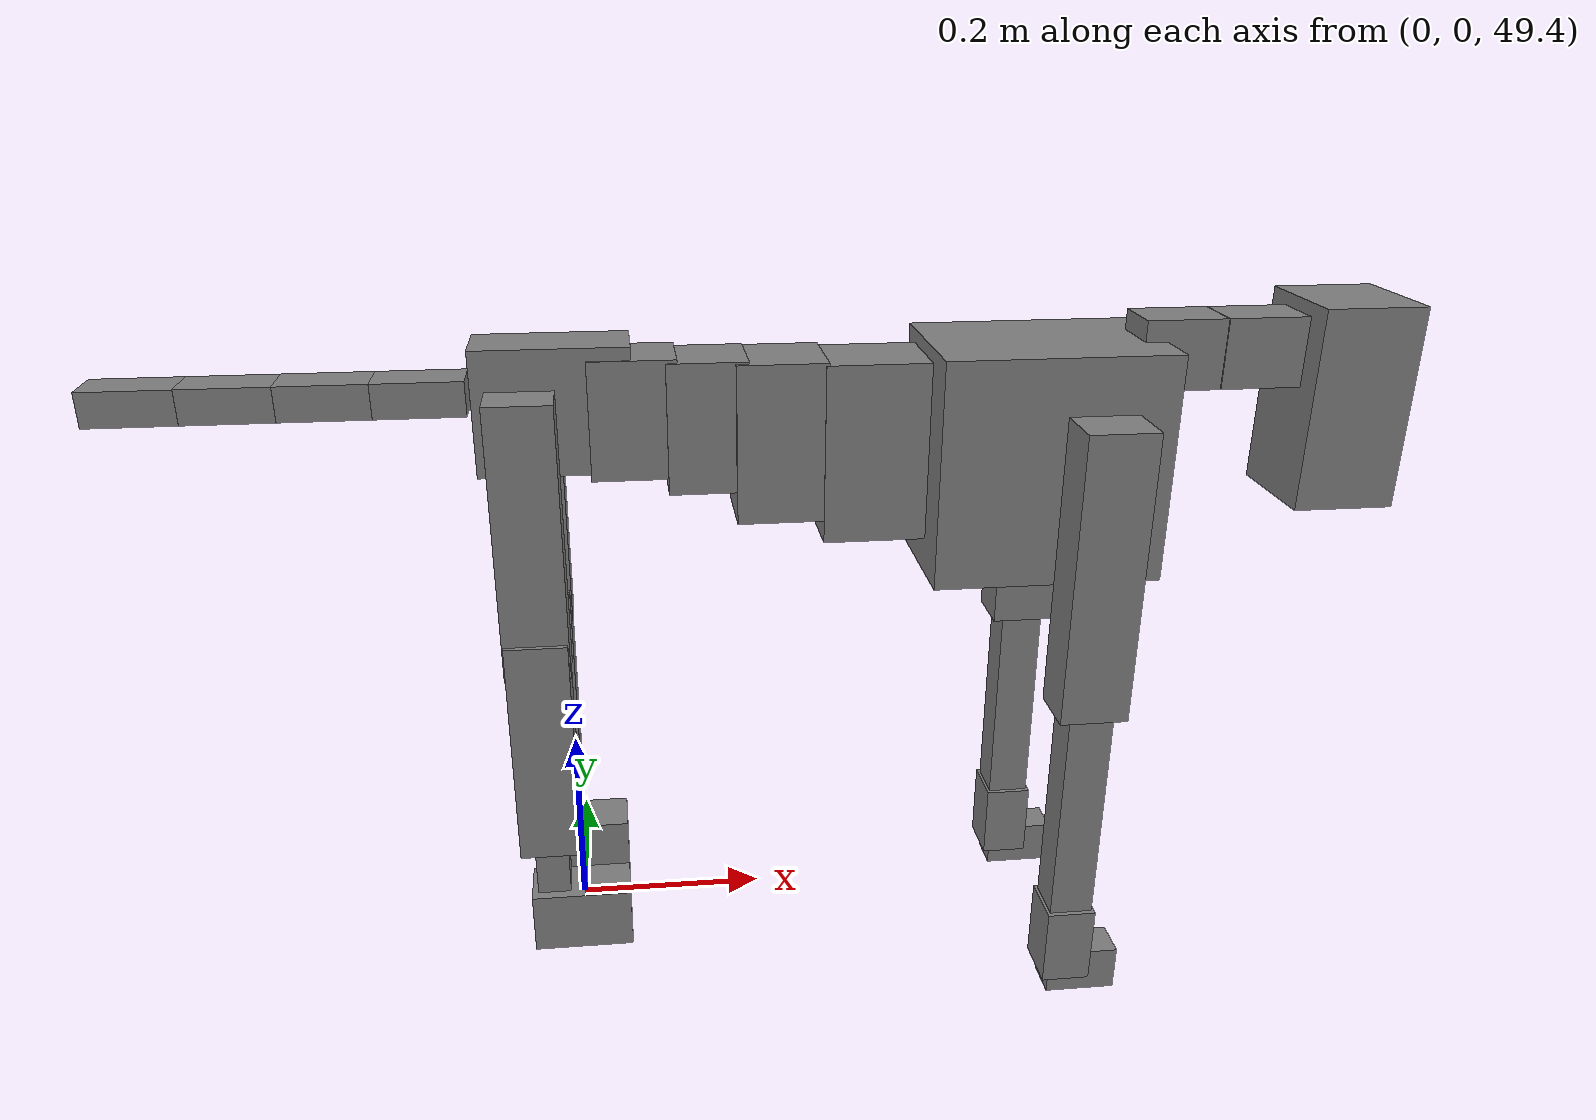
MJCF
<mujoco model="dog">

    <default>
        <joint armature="0.02" stiffness="1" damping="0.2" limited="true"/>
        <geom condim="3" friction="1 0.05 0.05" margin="0.01"/>
        <motor ctrllimited="true" ctrlrange="-1.0 1.0" forcelimited="true" gear="50"/>
    </default>

    <compiler inertiafromgeom="true" angle="radian"/>

    <option timestep="0.016" iterations="50" tolerance="1e-10" solver="Newton" jacobian="dense" cone="pyramidal"/>

    <size nconmax="20000" njmax="60000" nstack="5000000"/>
    <visual>
        <map force="0.1" zfar="30"/>
        <rgba haze="0.15 0.25 0.35 1"/>
        <quality shadowsize="2048"/>
        <global offwidth="800" offheight="800"/>
    </visual>

    <asset>
        <texture type="skybox" builtin="gradient" rgb1="0.3 0.5 0.7" rgb2="0 0 0" width="512" height="512"/>
        <texture name="texplane" type="2d" builtin="checker" rgb1=".2 .3 .4" rgb2=".1 0.15 0.2" width="512" height="512"
                 mark="cross" markrgb=".8 .8 .8"/>
        <texture name="texgeom" type="cube" builtin="flat" mark="cross" width="127" height="1278" rgb1="0.8 0.6 0.4"
                 rgb2="0.8 0.6 0.4" markrgb="1 1 1" random="0.01"/>

        <material name="matplane" reflectance="0.3" texture="texplane" texrepeat="1 1" texuniform="true"/>
        <material name="matgeom" texture="texgeom" texuniform="true" rgba="0.8 0.6 .4 1"/>
    </asset>

    <worldbody>
        <geom name="floor" pos="0 0 0" size="0 0 .25" type="plane" material="matplane" condim="3"/>

        <light directional="false" diffuse=".2 .2 .2" specular="0 0 0" pos="0 0 5" dir="0 0 -1" castshadow="false"/>
        <light mode="targetbodycom" target="torso" directional="false" diffuse=".8 .8 .8" specular="0.3 0.3 0.3"
               pos="0 0 4.0" dir="0 0 -1"/>

        <body name="root" pos="0 0 50">
            <freejoint name="root_1"/>
            <geom type="box" pos="0 0 -0.02" size="0.0774  0.0358  0.063" density="2030"/>

            <body name="spine1" pos="0.054 0 0">
                <joint name="spine1_y" axis="0 1 0" range="0 0.7" limited="true"/>
                <geom type="box" pos="0.02375 0 -0.03" size="0.04375  0.0375  0.05985" density="2030"/>

                <body name="spine2" pos="0.0612 0 0">
                    <joint name="spine2_y" axis="0 1 0" range="-0.15 0.15" limited="true"/>
                    <geom type="box" pos="0.03555  0  -0.04" size="0.04055  0.039  0.06615" density="2030"/>

                    <body name="spine3" pos="0.0730 0 0">
                        <joint name="spine3_y" axis="0 1 0" range="-0.15 0.15" limited="true"/>
                        <geom type="box" pos="0.03555  0  -0.057" size="0.04555  0.0445  0.081" density="2030"/>

                        <body name="spine4" pos="0.0780 0 0">
                            <joint name="spine4_y" axis="0 1 0" range="-0.15 0.15" limited="true"/>
                            <geom type="box" pos="0.05265  0  -0.07" size="0.05265  0.045  0.09135" density="2030"/>

                            <body name="torso" pos="0.1082 0 0">
                                <joint name="torso_y" axis="0 1 0" range="-0.15 0.15" limited="true"/>
                                <geom type="box" pos="0.11925  0  -0.085" size="0.11925  0.085  0.11745"
                                      density="2030"/>

                                <body name="neck1" pos="0.2160  0   0.0180">
                                    <joint name="neck1_y" axis="0 1 0" range="-1.2  -1" limited="true"/>
                                    <geom type="box" pos="0.0423  0  0" size="0.0423  0.03  0.036" density="2325"/>

                                    <body name="neck2" pos="0.0853  0  0">
                                        <joint name="neck2_y" axis="0 1 0" range="0.1  0" limited="true"/>
                                        <geom type="box" pos="0.0423  0  0" size="0.0423  0.03  0.036" density="2325"/>

                                        <body name="head" pos="0.0853  0  0">
                                            <joint name="head_y" axis="0 1 0" range="-0.3  -0.2" limited="true"/>
                                            <geom type="box" pos="0.0531  0  -0.055" size="0.0531  0.06  0.1044"
                                                  density="4030"/>

                                        </body>
                                    </body>
                                </body>

                                <body name="front_shoulder" pos="0.156  0   -0.0480">
                                    <joint name="front_shoulder_y" axis="0 1 0" range="-1 1.5" limited="true"/>
                                    <geom type="box" pos="0 0.13 -0.1256" size="0.0356  0.0304  0.1522" density="1158"/>
                                    <geom type="box" pos="0 -0.13 -0.1256" size="0.0356  0.0304  0.1522"
                                          density="1158"/>

                                    <body name="front_elbow" pos="0  0  -0.2512">
                                        <joint name="front_elbow_y" axis="0 1 0" range="-2 0" limited="true"/>
                                        <geom type="box" pos="0 0.13 -0.1389" size="0.0232  0.0237  0.1389"
                                              density="1081"/>
                                        <geom type="box" pos="0 -0.13 -0.1389" size="0.0232  0.0237  0.1389"
                                              density="1081"/>

                                        <body name="front_wrist" pos="0  0  -0.2779">
                                            <joint name="front_wrist_y" axis="0 1 0" range="-0.2 0" limited="true"/>
                                            <geom type="box" pos="0 0.13 -0.0302" size="0.0262  0.0291  0.0434"
                                                  density="1664"/>
                                            <geom type="box" pos="0 -0.13 -0.0302" size="0.0262  0.0291  0.0434"
                                                  density="1664"/>

                                            <body name="front_finger_end" pos="0  0  -0.0605">
                                                <joint name="front_finger_y" axis="0 1 0" range="-0.4 1"
                                                       limited="true"/>
                                                <geom type="box" pos="0.0210  0.13  -0.0099"
                                                      size="0.0385  0.0210  0.0249" density="1515"/>
                                                <geom type="box" pos="0.0210  -0.13  -0.0099"
                                                      size="0.0385  0.0210  0.0249" density="1515"/>

                                            </body>

                                        </body>
                                    </body>
                                </body>

                            </body>
                        </body>
                    </body>
                </body>
            </body>

            <body name="back_hip" pos="-0.03 0 -0.018">
                <joint name="back_hip_y" axis="0 1 0" range="-1.5 0.3" limited="true"/>
                <geom type="box" pos="0 0.07 -0.1185" size="0.0334  0.0262  0.1413" density="1154"/>
                <geom type="box" pos="0 -0.07 -0.1185" size="0.0334  0.0262  0.1413" density="1154"/>

                <body name="back_knee" pos="0  0  -0.2370">
                    <joint name="back_knee_y" axis="0 1 0" range="0 2.8" limited="true"/>
                    <geom type="box" pos="0 0.07 -0.1066" size="0.0320  0.0316  0.1222" density="1227"/>
                    <geom type="box" pos="0 -0.07 -0.1066" size="0.0320  0.0316  0.1222" density="1227"/>

                    <body name="back_ankle" pos="0  0  -0.2132">
                        <joint name="back_ankle_y" axis="0 1 0" range="-2.2 0" limited="true"/>
                        <geom type="box" pos="0 0.07 -0.0426" size="0.0177  0.0177  0.0539" density="1284"/>
                        <geom type="box" pos="0 -0.07 -0.0426" size="0.0177  0.0177  0.0539" density="1284"/>

                        <body name="back_toe_end" pos="0  0  -0.0853">
                            <joint name="back_toe_y" axis="0 1 0" range="-0.4 1" limited="true"/>
                            <geom type="box" pos="0.0290  0.07  -0.0183" size="0.0532  0.0290  0.0333" density="1515"/>
                            <geom type="box" pos="0.0290  -0.07  -0.0183" size="0.0532  0.0290  0.0333" density="1515"/>

                        </body>
                    </body>
                </body>
            </body>

            <body name="tail1" pos="-0.074 0 -0.006">
                <joint name="tail1_y" axis="0 1 0" range="-0.2 0.2" limited="true"/>
                <geom type="box" pos="-0.0536  0  0" size="0.045  0.025  0.0175" density="1587"/>

                <body name="tail2" pos="-0.09 0 0">
                    <joint name="tail2_y" axis="0 1 0" range="-0.2 0.2" limited="true"/>
                    <geom type="box" pos="-0.0536  0  0" size="0.045  0.025  0.0175" density="1587"/>

                    <body name="tail3" pos="-0.09 0 0">
                        <joint name="tail3_y" axis="0 1 0" range="-0.2 0.2" limited="true"/>
                        <geom type="box" pos="-0.0536  0  0" size="0.045  0.025  0.0175" density="1587"/>

                        <body name="tail4" pos="-0.09 0 0">
                            <joint name="tail4_y" axis="0 1 0" range="-0.2 0.2" limited="true"/>
                            <geom type="box" pos="-0.0536  0  0" size="0.045  0.025  0.0175" density="1587"/>

                        </body>
                    </body>
                </body>
            </body>
        </body>
    </worldbody>

    <actuator>
        <motor joint="spine1_y" forcerange="-150 150     "/>
        <motor joint="spine2_y" forcerange="-150 150     "/>
        <motor joint="spine3_y" forcerange="-150 150     "/>
        <motor joint="spine4_y" forcerange="-150 150     "/>
        <motor joint="torso_y" forcerange="-150 150     "/>
        <motor joint="neck1_y" forcerange="-100 100       "/>
        <motor joint="neck2_y" forcerange="-100 100       "/>
        <motor joint="head_y" forcerange="-150 150       "/>
        <motor joint="front_shoulder_y" forcerange="-165.11 137.54"/>
        <motor joint="front_elbow_y" forcerange="-167.12 105.21"/>
        <motor joint="front_wrist_y" forcerange="-133.12 99.41"/>
        <motor joint="front_finger_y" forcerange="-23.57 48.50"/>
        <motor joint="back_hip_y" forcerange="-317.64 231.13"/>
        <motor joint="back_knee_y" forcerange="-336.97 322.16"/>
        <motor joint="back_angle_y" forcerange="-129.31 54.56"/>
        <motor joint="back_toe_y" forcerange="-47.92 104.10"/>
        <motor joint="tail1_y" forcerange="-50 50     "/>
        <motor joint="tail2_y" forcerange="-50 50     "/>
        <motor joint="tail3_y" forcerange="-50 50     "/>
        <motor joint="tail4_y" forcerange="-50 50     "/>
    </actuator>
</mujoco>
